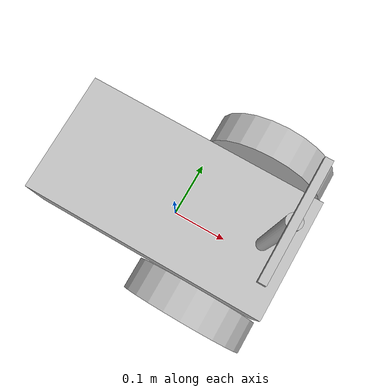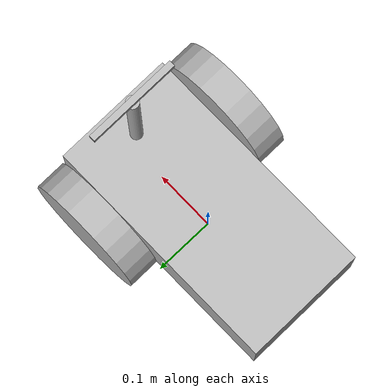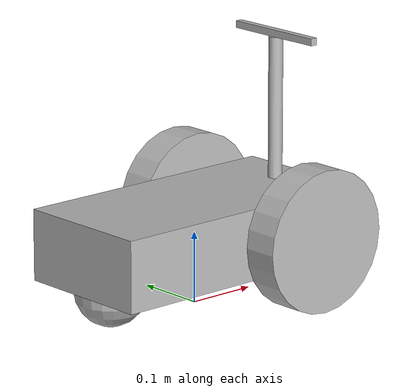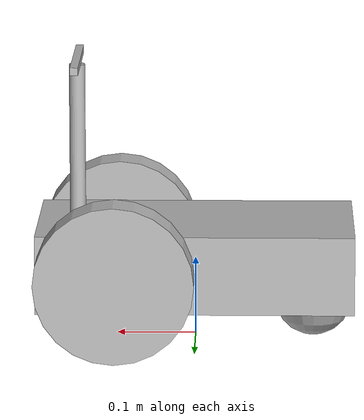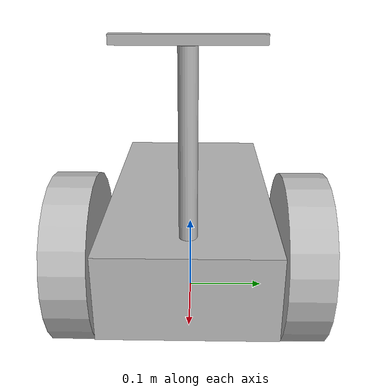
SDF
<?xml version='1.0'?>
<sdf version='1.4'>
  <model name="wheel_robot_2">
  <static>false</static>
    <link name='chassis'>
      <pose>0 0 .1 0 0 0</pose>
      <inertial>
        <mass>1.5</mass>
        <inertia>
          <ixx>0.03</ixx>
          <iyy>0.0</iyy>
          <izz>0.03</izz>
        </inertia>
      </inertial>
      <collision name='collision'>
        <geometry>
          <box>
            <size>.4 .2 .1</size>
          </box>
        </geometry>
      </collision>
      <visual name='visual'>
        <geometry>
          <box>
            <size>.4 .2 .1</size>
          </box>
        </geometry>
      </visual>

      <collision name='caster_collision'>
        <pose>-0.15 0 -0.05 0 0 0</pose>
        <geometry>
            <sphere>
            <radius>.05</radius>
          </sphere>
        </geometry>

        <surface>
          <friction>
            <ode>
              <mu>0</mu>
              <mu2>0</mu2>
              <slip1>1.0</slip1>
              <slip2>1.0</slip2>
            </ode>
          </friction>
        </surface>
      </collision>

      <visual name='caster_visual'>
        <pose>-0.15 0 -0.05 0 0 0</pose>
        <geometry>
          <sphere>
            <radius>.05</radius>
          </sphere>
        </geometry>
      </visual>

    </link>

    <link name="left_wheel">
      <pose>0.1 0.13 0.1 1.5707 0 0</pose>

      <collision name="collision">
        <geometry>
          <cylinder>
            <radius>.1</radius>
            <length>.05</length>
          </cylinder>
        </geometry>
      </collision>

      <visual name="visual">
        <geometry>
          <cylinder>
            <radius>.1</radius>
            <length>.05</length>
          </cylinder>
        </geometry>
      </visual>
    </link>

    <link name="right_wheel">
      <pose>0.1 -0.13 0.1 0 1.5707 1.5707</pose>

      <collision name="collision">
        <geometry>
          <cylinder>
            <radius>.1</radius>
            <length>.05</length>
          </cylinder>
        </geometry>
      </collision>

      <visual name="visual">
        <geometry>
          <cylinder>
            <radius>.1</radius>
            <length>.05</length>
          </cylinder>
        </geometry>
      </visual>
    </link>

    <!--添加关节.-->
    <joint type="revolute" name="left_wheel_hinge">
      <pose>0 0 -0.03 0 0 0</pose>
      <child>left_wheel</child>
      <parent>chassis</parent>
      <axis>
        <xyz>0 1 0</xyz>
        <dynamics>
          <friction>0.01</friction>        <!--添加关节摩擦力.-->
        </dynamics>
      </axis>
    </joint>

    <joint type="revolute" name="right_wheel_hinge">
      <pose>0 0 0.03 0 0 0</pose>
      <child>right_wheel</child>
      <parent>chassis</parent>
      <axis>
        <xyz>0 1 0</xyz>
        <dynamics>
          <friction>0.01</friction>        <!--添加关节摩擦力.-->
        </dynamics>
      </axis>
    </joint>

    <!--添加会转动的指南针.-->
    <link name="compass_base">
      <pose>0.15 0.0 0.25 0 0 0</pose>
      <collision name="collision">
        <geometry>
          <cylinder>
            <radius>.01</radius>
            <length>.2</length>
          </cylinder>
        </geometry>
      </collision>

      <visual name="visual">
        <geometry>
          <cylinder>
            <radius>.01</radius>
            <length>.2</length>
          </cylinder>
        </geometry>
      </visual>
    </link>

    <link name="compass">
      <pose>0.15 0 0.355 0 0 0</pose>
      <inertial>
        <mass>0.001</mass>
        <inertia>
          <ixx>0.001</ixx>
          <iyy>0.0</iyy>
          <izz>0.001</izz>
        </inertia>
      </inertial>
      <collision name="collision">
        <geometry>
          <box>
            <size>.01 .15 .01</size>
          </box>
        </geometry>
      </collision>

      <visual name="visual">
        <geometry>
          <box>
            <size>.01 .15 .01</size>
          </box>
        </geometry>
      </visual>
    </link>

    <joint type="revolute" name="compass_base_hinge">
      <pose>0 0 0 0 0 0</pose>
      <child>compass_base</child>
      <parent>chassis</parent>
      <axis>
        <xyz>0 0 1</xyz>
      </axis>
    </joint>
    <joint type="revolute" name="compass_hinge">
      <pose>0 0 0 0 0 0</pose>
      <child>compass</child>
      <parent>chassis</parent>
      <axis>
        <xyz>0 0 1</xyz>
      </axis>
    </joint>

    <plugin name="compass_model" filename="libalex_wheel_speed.so">
      <robotNamespace/>
      <jointName>compass_hinge</jointName>
      <linkName>compass</linkName>
    </plugin>

  </model>
</sdf>
